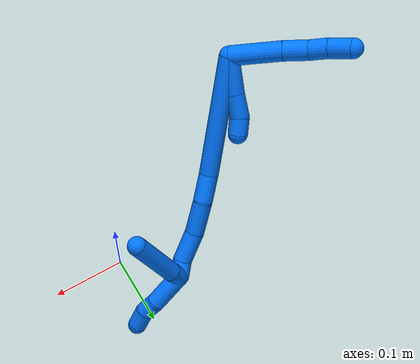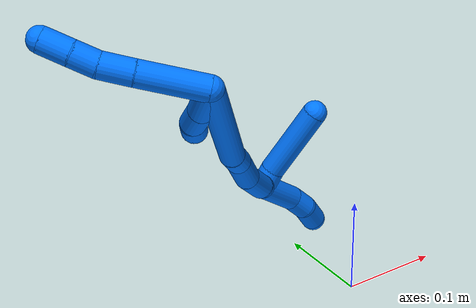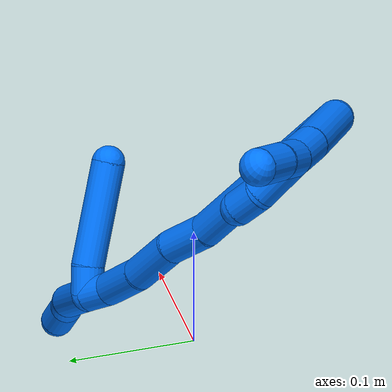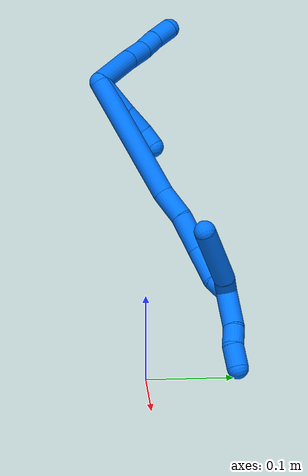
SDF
<sdf version="1.7">
 <world name="default">
  <model name="14">
   <static>0</static>
   <link name="14">
    <collision name="collision-cylinder-e_1_2_8">
     <pose>-0.027551 0.008796 0.015524 -0.515481 -0.996079 0.284735</pose>
     <geometry><cylinder><radius>0.0125</radius><length>0.065648</length></cylinder></geometry>
     <surface>
      <friction><ode><mu>1.16</mu><mu2>1.16</mu2><slip1>0</slip1><slip2>0</slip2></ode></friction>
      <contact><ode><kp>1e+06</kp><kd>1</kd><max_vel>0</max_vel><min_depth>0.001</min_depth></ode></contact>
     </surface>
    </collision>
    <visual name="visual-cylinder-e_1_2_8">
     <pose>-0.027551 0.008796 0.015524 -0.515481 -0.996079 0.284735</pose>
     <geometry><cylinder><radius>0.0125</radius><length>0.065648</length></cylinder></geometry>
     <material><ambient>0 0.462745 1 1</ambient></material>
    </visual>
    <collision name="collision-cylinder-e_2_8_9">
     <pose>-0.068486 0.022531 0.037702 -0.638696 -1.01645 0.3643</pose>
     <geometry><cylinder><radius>0.0125</radius><length>0.031483</length></cylinder></geometry>
     <surface>
      <friction><ode><mu>1.16</mu><mu2>1.16</mu2><slip1>0</slip1><slip2>0</slip2></ode></friction>
      <contact><ode><kp>1e+06</kp><kd>1</kd><max_vel>0</max_vel><min_depth>0.001</min_depth></ode></contact>
     </surface>
    </collision>
    <visual name="visual-cylinder-e_2_8_9">
     <pose>-0.068486 0.022531 0.037702 -0.638696 -1.01645 0.3643</pose>
     <geometry><cylinder><radius>0.0125</radius><length>0.031483</length></cylinder></geometry>
     <material><ambient>0 0.462745 1 1</ambient></material>
    </visual>
    <collision name="collision-cylinder-e_3_9_10">
     <pose>-0.090873 0.032922 0.050513 -0.7245 -0.830574 0.331144</pose>
     <geometry><cylinder><radius>0.0125</radius><length>0.02439</length></cylinder></geometry>
     <surface>
      <friction><ode><mu>1.16</mu><mu2>1.16</mu2><slip1>0</slip1><slip2>0</slip2></ode></friction>
      <contact><ode><kp>1e+06</kp><kd>1</kd><max_vel>0</max_vel><min_depth>0.001</min_depth></ode></contact>
     </surface>
    </collision>
    <visual name="visual-cylinder-e_3_9_10">
     <pose>-0.090873 0.032922 0.050513 -0.7245 -0.830574 0.331144</pose>
     <geometry><cylinder><radius>0.0125</radius><length>0.02439</length></cylinder></geometry>
     <material><ambient>0 0.462745 1 1</ambient></material>
    </visual>
    <collision name="collision-cylinder-e_4_10_6">
     <pose>-0.110711 0.045473 0.062587 -0.876166 -0.864599 0.425735</pose>
     <geometry><cylinder><radius>0.0125</radius><length>0.028479</length></cylinder></geometry>
     <surface>
      <friction><ode><mu>1.16</mu><mu2>1.16</mu2><slip1>0</slip1><slip2>0</slip2></ode></friction>
      <contact><ode><kp>1e+06</kp><kd>1</kd><max_vel>0</max_vel><min_depth>0.001</min_depth></ode></contact>
     </surface>
    </collision>
    <visual name="visual-cylinder-e_4_10_6">
     <pose>-0.110711 0.045473 0.062587 -0.876166 -0.864599 0.425735</pose>
     <geometry><cylinder><radius>0.0125</radius><length>0.028479</length></cylinder></geometry>
     <material><ambient>0 0.462745 1 1</ambient></material>
    </visual>
    <collision name="collision-cylinder-e_1_2_11">
     <pose>-0.011224 0.002744 -0.02066 -3.00954 -0.494 2.62867</pose>
     <geometry><cylinder><radius>0.0125</radius><length>0.047344</length></cylinder></geometry>
     <surface>
      <friction><ode><mu>1.16</mu><mu2>1.16</mu2><slip1>0</slip1><slip2>0</slip2></ode></friction>
      <contact><ode><kp>1e+06</kp><kd>1</kd><max_vel>0</max_vel><min_depth>0.001</min_depth></ode></contact>
     </surface>
    </collision>
    <visual name="visual-cylinder-e_1_2_11">
     <pose>-0.011224 0.002744 -0.02066 -3.00954 -0.494 2.62867</pose>
     <geometry><cylinder><radius>0.0125</radius><length>0.047344</length></cylinder></geometry>
     <material><ambient>0 0.462745 1 1</ambient></material>
    </visual>
    <collision name="collision-cylinder-e_2_11_12">
     <pose>-0.030589 0.007528 -0.054271 -2.98536 -0.555699 2.60591</pose>
     <geometry><cylinder><radius>0.0125</radius><length>0.030865</length></cylinder></geometry>
     <surface>
      <friction><ode><mu>1.16</mu><mu2>1.16</mu2><slip1>0</slip1><slip2>0</slip2></ode></friction>
      <contact><ode><kp>1e+06</kp><kd>1</kd><max_vel>0</max_vel><min_depth>0.001</min_depth></ode></contact>
     </surface>
    </collision>
    <visual name="visual-cylinder-e_2_11_12">
     <pose>-0.030589 0.007528 -0.054271 -2.98536 -0.555699 2.60591</pose>
     <geometry><cylinder><radius>0.0125</radius><length>0.030865</length></cylinder></geometry>
     <material><ambient>0 0.462745 1 1</ambient></material>
    </visual>
    <collision name="collision-cylinder-e_3_12_5">
     <pose>-0.041357 0.011474 -0.077623 -2.96041 -0.243494 1.86427</pose>
     <geometry><cylinder><radius>0.0125</radius><length>0.021791</length></cylinder></geometry>
     <surface>
      <friction><ode><mu>1.16</mu><mu2>1.16</mu2><slip1>0</slip1><slip2>0</slip2></ode></friction>
      <contact><ode><kp>1e+06</kp><kd>1</kd><max_vel>0</max_vel><min_depth>0.001</min_depth></ode></contact>
     </surface>
    </collision>
    <visual name="visual-cylinder-e_3_12_5">
     <pose>-0.041357 0.011474 -0.077623 -2.96041 -0.243494 1.86427</pose>
     <geometry><cylinder><radius>0.0125</radius><length>0.021791</length></cylinder></geometry>
     <material><ambient>0 0.462745 1 1</ambient></material>
    </visual>
    <collision name="collision-cylinder-e_1_2_13">
     <pose>-0.014585 0.005783 -0.075978 -3.06563 -0.189128 2.37947</pose>
     <geometry><cylinder><radius>0.0125</radius><length>0.155162</length></cylinder></geometry>
     <surface>
      <friction><ode><mu>1.16</mu><mu2>1.16</mu2><slip1>0</slip1><slip2>0</slip2></ode></friction>
      <contact><ode><kp>1e+06</kp><kd>1</kd><max_vel>0</max_vel><min_depth>0.001</min_depth></ode></contact>
     </surface>
    </collision>
    <visual name="visual-cylinder-e_1_2_13">
     <pose>-0.014585 0.005783 -0.075978 -3.06563 -0.189128 2.37947</pose>
     <geometry><cylinder><radius>0.0125</radius><length>0.155162</length></cylinder></geometry>
     <material><ambient>0 0.462745 1 1</ambient></material>
    </visual>
    <collision name="collision-cylinder-e_2_13_14">
     <pose>-0.031102 0.01624 -0.169628 -2.883 -0.105267 0.769938</pose>
     <geometry><cylinder><radius>0.0125</radius><length>0.036763</length></cylinder></geometry>
     <surface>
      <friction><ode><mu>1.16</mu><mu2>1.16</mu2><slip1>0</slip1><slip2>0</slip2></ode></friction>
      <contact><ode><kp>1e+06</kp><kd>1</kd><max_vel>0</max_vel><min_depth>0.001</min_depth></ode></contact>
     </surface>
    </collision>
    <visual name="visual-cylinder-e_2_13_14">
     <pose>-0.031102 0.01624 -0.169628 -2.883 -0.105267 0.769938</pose>
     <geometry><cylinder><radius>0.0125</radius><length>0.036763</length></cylinder></geometry>
     <material><ambient>0 0.462745 1 1</ambient></material>
    </visual>
    <collision name="collision-cylinder-e_3_14_15">
     <pose>-0.035391 0.022297 -0.209501 -3.07938 -0.105577 2.07722</pose>
     <geometry><cylinder><radius>0.0125</radius><length>0.044737</length></cylinder></geometry>
     <surface>
      <friction><ode><mu>1.16</mu><mu2>1.16</mu2><slip1>0</slip1><slip2>0</slip2></ode></friction>
      <contact><ode><kp>1e+06</kp><kd>1</kd><max_vel>0</max_vel><min_depth>0.001</min_depth></ode></contact>
     </surface>
    </collision>
    <visual name="visual-cylinder-e_3_14_15">
     <pose>-0.035391 0.022297 -0.209501 -3.07938 -0.105577 2.07722</pose>
     <geometry><cylinder><radius>0.0125</radius><length>0.044737</length></cylinder></geometry>
     <material><ambient>0 0.462745 1 1</ambient></material>
    </visual>
    <collision name="collision-cylinder-e_4_15_16">
     <pose>-0.036519 0.026671 -0.252589 -2.99936 0.058174 -0.775497</pose>
     <geometry><cylinder><radius>0.0125</radius><length>0.042271</length></cylinder></geometry>
     <surface>
      <friction><ode><mu>1.16</mu><mu2>1.16</mu2><slip1>0</slip1><slip2>0</slip2></ode></friction>
      <contact><ode><kp>1e+06</kp><kd>1</kd><max_vel>0</max_vel><min_depth>0.001</min_depth></ode></contact>
     </surface>
    </collision>
    <visual name="visual-cylinder-e_4_15_16">
     <pose>-0.036519 0.026671 -0.252589 -2.99936 0.058174 -0.775497</pose>
     <geometry><cylinder><radius>0.0125</radius><length>0.042271</length></cylinder></geometry>
     <material><ambient>0 0.462745 1 1</ambient></material>
    </visual>
    <collision name="collision-cylinder-e_5_16_1">
     <pose>-0.036438 0.033997 -0.283006 -2.71477 -0.109156 0.493901</pose>
     <geometry><cylinder><radius>0.0125</radius><length>0.021067</length></cylinder></geometry>
     <surface>
      <friction><ode><mu>1.16</mu><mu2>1.16</mu2><slip1>0</slip1><slip2>0</slip2></ode></friction>
      <contact><ode><kp>1e+06</kp><kd>1</kd><max_vel>0</max_vel><min_depth>0.001</min_depth></ode></contact>
     </surface>
    </collision>
    <visual name="visual-cylinder-e_5_16_1">
     <pose>-0.036438 0.033997 -0.283006 -2.71477 -0.109156 0.493901</pose>
     <geometry><cylinder><radius>0.0125</radius><length>0.021067</length></cylinder></geometry>
     <material><ambient>0 0.462745 1 1</ambient></material>
    </visual>
    <collision name="collision-cylinder-e_1_1_17">
     <pose>-0.029803 0.043976 -0.287682 -0.860368 0.807529 -0.387161</pose>
     <geometry><cylinder><radius>0.0125</radius><length>0.021542</length></cylinder></geometry>
     <surface>
      <friction><ode><mu>1.16</mu><mu2>1.16</mu2><slip1>0</slip1><slip2>0</slip2></ode></friction>
      <contact><ode><kp>1e+06</kp><kd>1</kd><max_vel>0</max_vel><min_depth>0.001</min_depth></ode></contact>
     </surface>
    </collision>
    <visual name="visual-cylinder-e_1_1_17">
     <pose>-0.029803 0.043976 -0.287682 -0.860368 0.807529 -0.387161</pose>
     <geometry><cylinder><radius>0.0125</radius><length>0.021542</length></cylinder></geometry>
     <material><ambient>0 0.462745 1 1</ambient></material>
    </visual>
    <collision name="collision-cylinder-e_2_17_4">
     <pose>0.008614 0.063956 -0.262952 -0.624885 0.896093 -0.308061</pose>
     <geometry><cylinder><radius>0.0125</radius><length>0.078458</length></cylinder></geometry>
     <surface>
      <friction><ode><mu>1.16</mu><mu2>1.16</mu2><slip1>0</slip1><slip2>0</slip2></ode></friction>
      <contact><ode><kp>1e+06</kp><kd>1</kd><max_vel>0</max_vel><min_depth>0.001</min_depth></ode></contact>
     </surface>
    </collision>
    <visual name="visual-cylinder-e_2_17_4">
     <pose>0.008614 0.063956 -0.262952 -0.624885 0.896093 -0.308061</pose>
     <geometry><cylinder><radius>0.0125</radius><length>0.078458</length></cylinder></geometry>
     <material><ambient>0 0.462745 1 1</ambient></material>
    </visual>
    <collision name="collision-cylinder-e_1_1_18">
     <pose>-0.028989 0.038793 -0.316506 -3.12232 0.344304 -3.03086</pose>
     <geometry><cylinder><radius>0.0125</radius><length>0.050934</length></cylinder></geometry>
     <surface>
      <friction><ode><mu>1.16</mu><mu2>1.16</mu2><slip1>0</slip1><slip2>0</slip2></ode></friction>
      <contact><ode><kp>1e+06</kp><kd>1</kd><max_vel>0</max_vel><min_depth>0.001</min_depth></ode></contact>
     </surface>
    </collision>
    <visual name="visual-cylinder-e_1_1_18">
     <pose>-0.028989 0.038793 -0.316506 -3.12232 0.344304 -3.03086</pose>
     <geometry><cylinder><radius>0.0125</radius><length>0.050934</length></cylinder></geometry>
     <material><ambient>0 0.462745 1 1</ambient></material>
    </visual>
    <collision name="collision-cylinder-e_2_18_19">
     <pose>-0.016469 0.036643 -0.350674 2.89092 0.356719 1.92159</pose>
     <geometry><cylinder><radius>0.0125</radius><length>0.022473</length></cylinder></geometry>
     <surface>
      <friction><ode><mu>1.16</mu><mu2>1.16</mu2><slip1>0</slip1><slip2>0</slip2></ode></friction>
      <contact><ode><kp>1e+06</kp><kd>1</kd><max_vel>0</max_vel><min_depth>0.001</min_depth></ode></contact>
     </surface>
    </collision>
    <visual name="visual-cylinder-e_2_18_19">
     <pose>-0.016469 0.036643 -0.350674 2.89092 0.356719 1.92159</pose>
     <geometry><cylinder><radius>0.0125</radius><length>0.022473</length></cylinder></geometry>
     <material><ambient>0 0.462745 1 1</ambient></material>
    </visual>
    <collision name="collision-cylinder-e_3_19_3">
     <pose>-0.01172 0.032271 -0.374027 3.00855 0.062083 0.872325</pose>
     <geometry><cylinder><radius>0.0125</radius><length>0.026593</length></cylinder></geometry>
     <surface>
      <friction><ode><mu>1.16</mu><mu2>1.16</mu2><slip1>0</slip1><slip2>0</slip2></ode></friction>
      <contact><ode><kp>1e+06</kp><kd>1</kd><max_vel>0</max_vel><min_depth>0.001</min_depth></ode></contact>
     </surface>
    </collision>
    <visual name="visual-cylinder-e_3_19_3">
     <pose>-0.01172 0.032271 -0.374027 3.00855 0.062083 0.872325</pose>
     <geometry><cylinder><radius>0.0125</radius><length>0.026593</length></cylinder></geometry>
     <material><ambient>0 0.462745 1 1</ambient></material>
    </visual>
    <collision name="collision-sphere-3">
     <pose>-0.010896 0.030511 -0.387181 0 -0 0</pose>
     <geometry><sphere><radius>0.0125</radius></sphere></geometry>
     <surface>
      <friction><ode><mu>1.16</mu><mu2>1.16</mu2><slip1>0</slip1><slip2>0</slip2></ode></friction>
      <contact><ode><kp>1e+06</kp><kd>1</kd><max_vel>0</max_vel><min_depth>0.001</min_depth></ode></contact>
     </surface>
    </collision>
    <visual name="visual-sphere-3">
     <pose>-0.010896 0.030511 -0.387181 0 -0 0</pose>
     <geometry><sphere><radius>0.0125</radius></sphere></geometry>
     <material><ambient>0 0.462745 1 1</ambient></material>
    </visual>
    <collision name="collision-sphere-19">
     <pose>-0.012545 0.034032 -0.360874 0 -0 0</pose>
     <geometry><sphere><radius>0.0125</radius></sphere></geometry>
     <surface>
      <friction><ode><mu>1.16</mu><mu2>1.16</mu2><slip1>0</slip1><slip2>0</slip2></ode></friction>
      <contact><ode><kp>1e+06</kp><kd>1</kd><max_vel>0</max_vel><min_depth>0.001</min_depth></ode></contact>
     </surface>
    </collision>
    <visual name="visual-sphere-19">
     <pose>-0.012545 0.034032 -0.360874 0 -0 0</pose>
     <geometry><sphere><radius>0.0125</radius></sphere></geometry>
     <material><ambient>0 0.462745 1 1</ambient></material>
    </visual>
    <collision name="collision-sphere-11">
     <pose>-0.022448 0.005488 -0.04132 0 -0 0</pose>
     <geometry><sphere><radius>0.0125</radius></sphere></geometry>
     <surface>
      <friction><ode><mu>1.16</mu><mu2>1.16</mu2><slip1>0</slip1><slip2>0</slip2></ode></friction>
      <contact><ode><kp>1e+06</kp><kd>1</kd><max_vel>0</max_vel><min_depth>0.001</min_depth></ode></contact>
     </surface>
    </collision>
    <visual name="visual-sphere-11">
     <pose>-0.022448 0.005488 -0.04132 0 -0 0</pose>
     <geometry><sphere><radius>0.0125</radius></sphere></geometry>
     <material><ambient>0 0.462745 1 1</ambient></material>
    </visual>
    <collision name="collision-sphere-6">
     <pose>-0.121545 0.052572 0.068502 0 -0 0</pose>
     <geometry><sphere><radius>0.0125</radius></sphere></geometry>
     <surface>
      <friction><ode><mu>1.16</mu><mu2>1.16</mu2><slip1>0</slip1><slip2>0</slip2></ode></friction>
      <contact><ode><kp>1e+06</kp><kd>1</kd><max_vel>0</max_vel><min_depth>0.001</min_depth></ode></contact>
     </surface>
    </collision>
    <visual name="visual-sphere-6">
     <pose>-0.121545 0.052572 0.068502 0 -0 0</pose>
     <geometry><sphere><radius>0.0125</radius></sphere></geometry>
     <material><ambient>0 0.462745 1 1</ambient></material>
    </visual>
    <collision name="collision-sphere-10">
     <pose>-0.099877 0.038373 0.056672 0 -0 0</pose>
     <geometry><sphere><radius>0.0125</radius></sphere></geometry>
     <surface>
      <friction><ode><mu>1.16</mu><mu2>1.16</mu2><slip1>0</slip1><slip2>0</slip2></ode></friction>
      <contact><ode><kp>1e+06</kp><kd>1</kd><max_vel>0</max_vel><min_depth>0.001</min_depth></ode></contact>
     </surface>
    </collision>
    <visual name="visual-sphere-10">
     <pose>-0.099877 0.038373 0.056672 0 -0 0</pose>
     <geometry><sphere><radius>0.0125</radius></sphere></geometry>
     <material><ambient>0 0.462745 1 1</ambient></material>
    </visual>
    <collision name="collision-sphere-9">
     <pose>-0.08187 0.027471 0.044354 0 -0 0</pose>
     <geometry><sphere><radius>0.0125</radius></sphere></geometry>
     <surface>
      <friction><ode><mu>1.16</mu><mu2>1.16</mu2><slip1>0</slip1><slip2>0</slip2></ode></friction>
      <contact><ode><kp>1e+06</kp><kd>1</kd><max_vel>0</max_vel><min_depth>0.001</min_depth></ode></contact>
     </surface>
    </collision>
    <visual name="visual-sphere-9">
     <pose>-0.08187 0.027471 0.044354 0 -0 0</pose>
     <geometry><sphere><radius>0.0125</radius></sphere></geometry>
     <material><ambient>0 0.462745 1 1</ambient></material>
    </visual>
    <collision name="collision-sphere-2">
     <geometry><sphere><radius>0.0125</radius></sphere></geometry>
     <surface>
      <friction><ode><mu>1.16</mu><mu2>1.16</mu2><slip1>0</slip1><slip2>0</slip2></ode></friction>
      <contact><ode><kp>1e+06</kp><kd>1</kd><max_vel>0</max_vel><min_depth>0.001</min_depth></ode></contact>
     </surface>
    </collision>
    <visual name="visual-sphere-2">
     <geometry><sphere><radius>0.0125</radius></sphere></geometry>
     <material><ambient>0 0.462745 1 1</ambient></material>
    </visual>
    <collision name="collision-sphere-8">
     <pose>-0.055101 0.017592 0.031049 0 -0 0</pose>
     <geometry><sphere><radius>0.0125</radius></sphere></geometry>
     <surface>
      <friction><ode><mu>1.16</mu><mu2>1.16</mu2><slip1>0</slip1><slip2>0</slip2></ode></friction>
      <contact><ode><kp>1e+06</kp><kd>1</kd><max_vel>0</max_vel><min_depth>0.001</min_depth></ode></contact>
     </surface>
    </collision>
    <visual name="visual-sphere-8">
     <pose>-0.055101 0.017592 0.031049 0 -0 0</pose>
     <geometry><sphere><radius>0.0125</radius></sphere></geometry>
     <material><ambient>0 0.462745 1 1</ambient></material>
    </visual>
    <collision name="collision-sphere-12">
     <pose>-0.038731 0.009568 -0.067222 0 -0 0</pose>
     <geometry><sphere><radius>0.0125</radius></sphere></geometry>
     <surface>
      <friction><ode><mu>1.16</mu><mu2>1.16</mu2><slip1>0</slip1><slip2>0</slip2></ode></friction>
      <contact><ode><kp>1e+06</kp><kd>1</kd><max_vel>0</max_vel><min_depth>0.001</min_depth></ode></contact>
     </surface>
    </collision>
    <visual name="visual-sphere-12">
     <pose>-0.038731 0.009568 -0.067222 0 -0 0</pose>
     <geometry><sphere><radius>0.0125</radius></sphere></geometry>
     <material><ambient>0 0.462745 1 1</ambient></material>
    </visual>
    <collision name="collision-sphere-5">
     <pose>-0.043984 0.013379 -0.088024 0 -0 0</pose>
     <geometry><sphere><radius>0.0125</radius></sphere></geometry>
     <surface>
      <friction><ode><mu>1.16</mu><mu2>1.16</mu2><slip1>0</slip1><slip2>0</slip2></ode></friction>
      <contact><ode><kp>1e+06</kp><kd>1</kd><max_vel>0</max_vel><min_depth>0.001</min_depth></ode></contact>
     </surface>
    </collision>
    <visual name="visual-sphere-5">
     <pose>-0.043984 0.013379 -0.088024 0 -0 0</pose>
     <geometry><sphere><radius>0.0125</radius></sphere></geometry>
     <material><ambient>0 0.462745 1 1</ambient></material>
    </visual>
    <collision name="collision-sphere-13">
     <pose>-0.029171 0.011565 -0.151956 0 -0 0</pose>
     <geometry><sphere><radius>0.0125</radius></sphere></geometry>
     <surface>
      <friction><ode><mu>1.16</mu><mu2>1.16</mu2><slip1>0</slip1><slip2>0</slip2></ode></friction>
      <contact><ode><kp>1e+06</kp><kd>1</kd><max_vel>0</max_vel><min_depth>0.001</min_depth></ode></contact>
     </surface>
    </collision>
    <visual name="visual-sphere-13">
     <pose>-0.029171 0.011565 -0.151956 0 -0 0</pose>
     <geometry><sphere><radius>0.0125</radius></sphere></geometry>
     <material><ambient>0 0.462745 1 1</ambient></material>
    </visual>
    <collision name="collision-sphere-14">
     <pose>-0.033034 0.020914 -0.1873 0 -0 0</pose>
     <geometry><sphere><radius>0.0125</radius></sphere></geometry>
     <surface>
      <friction><ode><mu>1.16</mu><mu2>1.16</mu2><slip1>0</slip1><slip2>0</slip2></ode></friction>
      <contact><ode><kp>1e+06</kp><kd>1</kd><max_vel>0</max_vel><min_depth>0.001</min_depth></ode></contact>
     </surface>
    </collision>
    <visual name="visual-sphere-14">
     <pose>-0.033034 0.020914 -0.1873 0 -0 0</pose>
     <geometry><sphere><radius>0.0125</radius></sphere></geometry>
     <material><ambient>0 0.462745 1 1</ambient></material>
    </visual>
    <collision name="collision-sphere-15">
     <pose>-0.037748 0.02368 -0.231702 0 -0 0</pose>
     <geometry><sphere><radius>0.0125</radius></sphere></geometry>
     <surface>
      <friction><ode><mu>1.16</mu><mu2>1.16</mu2><slip1>0</slip1><slip2>0</slip2></ode></friction>
      <contact><ode><kp>1e+06</kp><kd>1</kd><max_vel>0</max_vel><min_depth>0.001</min_depth></ode></contact>
     </surface>
    </collision>
    <visual name="visual-sphere-15">
     <pose>-0.037748 0.02368 -0.231702 0 -0 0</pose>
     <geometry><sphere><radius>0.0125</radius></sphere></geometry>
     <material><ambient>0 0.462745 1 1</ambient></material>
    </visual>
    <collision name="collision-sphere-16">
     <pose>-0.03529 0.029662 -0.273475 0 -0 0</pose>
     <geometry><sphere><radius>0.0125</radius></sphere></geometry>
     <surface>
      <friction><ode><mu>1.16</mu><mu2>1.16</mu2><slip1>0</slip1><slip2>0</slip2></ode></friction>
      <contact><ode><kp>1e+06</kp><kd>1</kd><max_vel>0</max_vel><min_depth>0.001</min_depth></ode></contact>
     </surface>
    </collision>
    <visual name="visual-sphere-16">
     <pose>-0.03529 0.029662 -0.273475 0 -0 0</pose>
     <geometry><sphere><radius>0.0125</radius></sphere></geometry>
     <material><ambient>0 0.462745 1 1</ambient></material>
    </visual>
    <collision name="collision-sphere-1">
     <pose>-0.037585 0.038331 -0.292538 0 -0 0</pose>
     <geometry><sphere><radius>0.0125</radius></sphere></geometry>
     <surface>
      <friction><ode><mu>1.16</mu><mu2>1.16</mu2><slip1>0</slip1><slip2>0</slip2></ode></friction>
      <contact><ode><kp>1e+06</kp><kd>1</kd><max_vel>0</max_vel><min_depth>0.001</min_depth></ode></contact>
     </surface>
    </collision>
    <visual name="visual-sphere-1">
     <pose>-0.037585 0.038331 -0.292538 0 -0 0</pose>
     <geometry><sphere><radius>0.0125</radius></sphere></geometry>
     <material><ambient>0 0.462745 1 1</ambient></material>
    </visual>
    <collision name="collision-sphere-18">
     <pose>-0.020393 0.039255 -0.340474 0 -0 0</pose>
     <geometry><sphere><radius>0.0125</radius></sphere></geometry>
     <surface>
      <friction><ode><mu>1.16</mu><mu2>1.16</mu2><slip1>0</slip1><slip2>0</slip2></ode></friction>
      <contact><ode><kp>1e+06</kp><kd>1</kd><max_vel>0</max_vel><min_depth>0.001</min_depth></ode></contact>
     </surface>
    </collision>
    <visual name="visual-sphere-18">
     <pose>-0.020393 0.039255 -0.340474 0 -0 0</pose>
     <geometry><sphere><radius>0.0125</radius></sphere></geometry>
     <material><ambient>0 0.462745 1 1</ambient></material>
    </visual>
    <collision name="collision-sphere-17">
     <pose>-0.02202 0.04962 -0.282826 0 -0 0</pose>
     <geometry><sphere><radius>0.0125</radius></sphere></geometry>
     <surface>
      <friction><ode><mu>1.16</mu><mu2>1.16</mu2><slip1>0</slip1><slip2>0</slip2></ode></friction>
      <contact><ode><kp>1e+06</kp><kd>1</kd><max_vel>0</max_vel><min_depth>0.001</min_depth></ode></contact>
     </surface>
    </collision>
    <visual name="visual-sphere-17">
     <pose>-0.02202 0.04962 -0.282826 0 -0 0</pose>
     <geometry><sphere><radius>0.0125</radius></sphere></geometry>
     <material><ambient>0 0.462745 1 1</ambient></material>
    </visual>
    <collision name="collision-sphere-4">
     <pose>0.039248 0.078291 -0.243077 0 -0 0</pose>
     <geometry><sphere><radius>0.0125</radius></sphere></geometry>
     <surface>
      <friction><ode><mu>1.16</mu><mu2>1.16</mu2><slip1>0</slip1><slip2>0</slip2></ode></friction>
      <contact><ode><kp>1e+06</kp><kd>1</kd><max_vel>0</max_vel><min_depth>0.001</min_depth></ode></contact>
     </surface>
    </collision>
    <visual name="visual-sphere-4">
     <pose>0.039248 0.078291 -0.243077 0 -0 0</pose>
     <geometry><sphere><radius>0.0125</radius></sphere></geometry>
     <material><ambient>0 0.462745 1 1</ambient></material>
    </visual>
    <inertial>
     <pose>-0.028182 0.02394 -0.138582 0 -0 0</pose>
     <mass>0.75</mass>
     <inertia>
      <ixx>2.6e-05</ixx>
      <ixy>0</ixy>
      <ixz>0</ixz>
      <iyy>0.000565</iyy>
      <iyz>0</iyz>
      <izz>-2.7e-05</izz>
     </inertia>
    </inertial>
   </link>
   <pose>-0.196511 -0.042834 0.304347 0.624859 -0.336283 -0.658635</pose>
  </model>
 </world>
</sdf>
